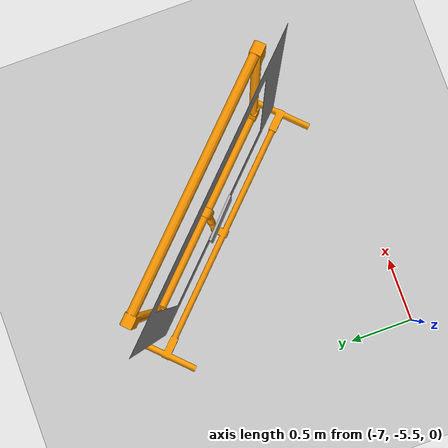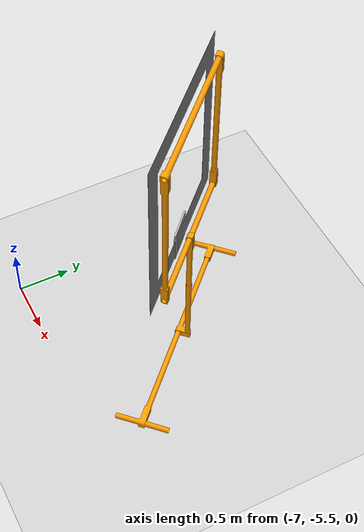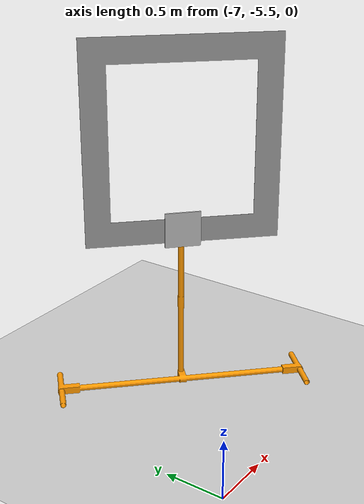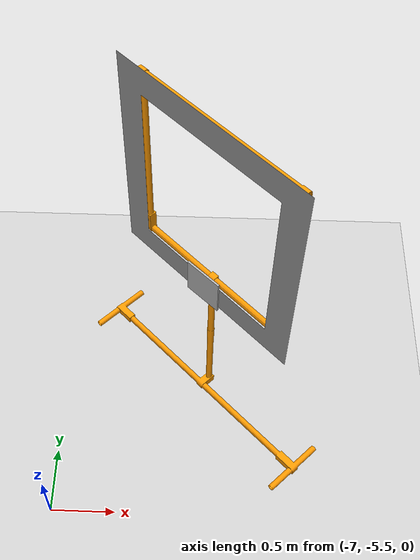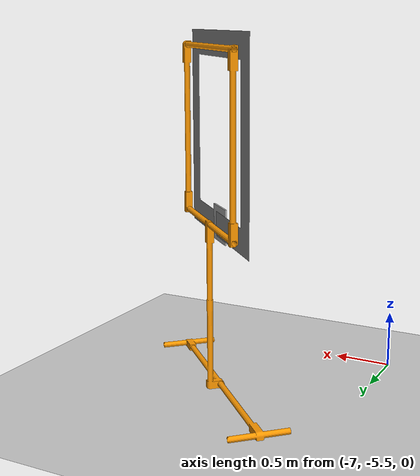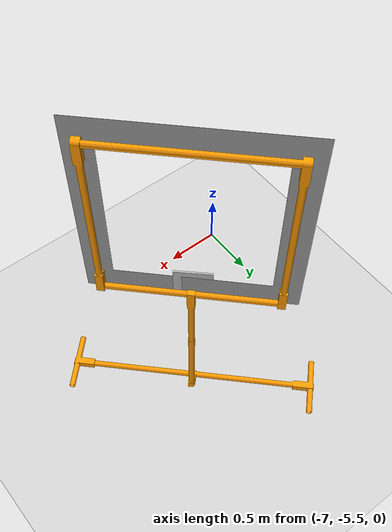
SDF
<sdf version="1.7">
 <world name="default">
  <model name="ground_plane">
   <static>1</static>
   <link name="link">
    <collision name="collision">
     <geometry><plane><normal>0 0 1</normal><size>100 100</size></plane></geometry>
     <surface>
      <contact><collide_bitmask>65535</collide_bitmask></contact>
      <friction><ode><mu>100</mu><mu2>50</mu2></ode></friction>
     </surface>
    </collision>
    <visual name="visual">
     <cast_shadows>0</cast_shadows>
     <geometry><plane><normal>0 0 1</normal><size>100 100</size></plane></geometry>
     <material>
      <script><uri>file://media/materials/scripts/gazebo.material</uri><name>Gazebo/Grey</name></script>
     </material>
    </visual>
   </link>
  </model>
  <model name="Aruco_gate_5">
   <link name="aruco">
    <pose>0.135 0 1.45017 0 -0 1.6</pose>
    <collision name="collision"><geometry><box><size>0.3 0.015 0.3</size></box></geometry></collision>
    <visual name="visual">
     <pose>0 0 0 0 1.57 0</pose>
     <geometry><box><size>0.3 0.015 0.3</size></box></geometry>
     <material>
      <script>
       <uri>model://aruco/materials/scripts</uri>
       <uri>model://aruco/materials/textures</uri>
       <name>aruco_5/Diffuse</name>
      </script>
     </material>
    </visual>
   </link>
   <link name="link_0">
    <pose>-0.126667 1.11221 0.000173 1.57 -0 0</pose>
    <inertial>
     <mass>1</mass>
     <inertia>
      <ixx>0.166667</ixx>
      <ixy>0</ixy>
      <ixz>0</ixz>
      <iyy>0.166667</iyy>
      <iyz>0</iyz>
      <izz>0.166667</izz>
     </inertia>
    </inertial>
    <visual name="visual">
     <geometry><mesh><uri>model://aruco_gate_1/meshes/base.stl</uri><scale>1 1 1</scale></mesh></geometry>
     <material>
      <lighting>1</lighting>
      <script><uri>file://media/materials/scripts/gazebo.material</uri><name>Gazebo/Grey</name></script>
      <ambient>1 0.6 0 1</ambient>
      <diffuse>1 0.6 0 1</diffuse>
      <specular>0.01 0.01 0.01 1</specular>
      <emissive>0 0 0 1</emissive>
      <shader type="vertex"><normal_map>__default__</normal_map></shader>
     </material>
    </visual>
    <collision name="collision">
     <geometry><mesh><uri>model://aruco_gate_1/meshes/base.stl</uri></mesh></geometry>
     <surface>
      <friction>
       <ode><mu>1</mu><mu2>1</mu2><fdir1>0 0 0</fdir1><slip1>0</slip1><slip2>0</slip2></ode>
       <torsional>
        <coefficient>1</coefficient>
        <patch_radius>0</patch_radius>
        <surface_radius>0</surface_radius>
        <use_patch_radius>1</use_patch_radius>
        <ode><slip>0</slip></ode>
       </torsional>
      </friction>
      <bounce><restitution_coefficient>0</restitution_coefficient><threshold>1e+06</threshold></bounce>
      <contact>
       <collide_without_contact>0</collide_without_contact>
       <collide_without_contact_bitmask>1</collide_without_contact_bitmask>
       <collide_bitmask>1</collide_bitmask>
       <ode>
        <soft_cfm>0</soft_cfm>
        <soft_erp>0.2</soft_erp>
        <kp>1e+13</kp>
        <kd>1</kd>
        <max_vel>0.01</max_vel>
        <min_depth>0</min_depth>
       </ode>
       <bullet>
        <split_impulse>1</split_impulse>
        <split_impulse_penetration_threshold>-0.01</split_impulse_penetration_threshold>
        <soft_cfm>0</soft_cfm>
        <soft_erp>0.2</soft_erp>
        <kp>1e+13</kp>
        <kd>1</kd>
       </bullet>
      </contact>
     </surface>
    </collision>
   </link>
   <link name="link_1">
    <pose>0.003333 -0.7 1.40017 0 -0 0</pose>
    <inertial>
     <mass>1</mass>
     <inertia>
      <ixx>0.166667</ixx>
      <ixy>0</ixy>
      <ixz>0</ixz>
      <iyy>0.166667</iyy>
      <iyz>0</iyz>
      <izz>0.166667</izz>
     </inertia>
    </inertial>
    <visual name="visual">
     <geometry><mesh><uri>model://aruco_gate_1/meshes/hoop.stl</uri><scale>1 1 1</scale></mesh></geometry>
     <material>
      <lighting>1</lighting>
      <script><uri>file://media/materials/scripts/gazebo.material</uri><name>Gazebo/Grey</name></script>
      <ambient>1 0.6 0 1</ambient>
      <diffuse>1 0.6 0 1</diffuse>
      <specular>0.01 0.01 0.01 1</specular>
      <emissive>0 0 0 1</emissive>
      <shader type="vertex"><normal_map>__default__</normal_map></shader>
     </material>
    </visual>
    <collision name="collision">
     <geometry><mesh><uri>model://aruco_gate_1/meshes/hoop.stl</uri></mesh></geometry>
     <surface>
      <friction>
       <ode><mu>1</mu><mu2>1</mu2><fdir1>0 0 0</fdir1><slip1>0</slip1><slip2>0</slip2></ode>
       <torsional>
        <coefficient>1</coefficient>
        <patch_radius>0</patch_radius>
        <surface_radius>0</surface_radius>
        <use_patch_radius>1</use_patch_radius>
        <ode><slip>0</slip></ode>
       </torsional>
      </friction>
      <bounce><restitution_coefficient>0</restitution_coefficient><threshold>1e+06</threshold></bounce>
      <contact>
       <collide_without_contact>0</collide_without_contact>
       <collide_without_contact_bitmask>1</collide_without_contact_bitmask>
       <collide_bitmask>1</collide_bitmask>
       <ode>
        <soft_cfm>0</soft_cfm>
        <soft_erp>0.2</soft_erp>
        <kp>1e+13</kp>
        <kd>1</kd>
        <max_vel>0.01</max_vel>
        <min_depth>0</min_depth>
       </ode>
       <bullet>
        <split_impulse>1</split_impulse>
        <split_impulse_penetration_threshold>-0.01</split_impulse_penetration_threshold>
        <soft_cfm>0</soft_cfm>
        <soft_erp>0.2</soft_erp>
        <kp>1e+13</kp>
        <kd>1</kd>
       </bullet>
      </contact>
     </surface>
    </collision>
   </link>
   <link name="link_2">
    <pose>0.123333 -0.797794 3.62017 0 1.57 0</pose>
    <inertial>
     <mass>1</mass>
     <inertia>
      <ixx>0.166667</ixx>
      <ixy>0</ixy>
      <ixz>0</ixz>
      <iyy>0.166667</iyy>
      <iyz>0</iyz>
      <izz>0.166667</izz>
     </inertia>
    </inertial>
    <visual name="visual">
     <geometry><mesh><uri>model://aruco_gate_1/meshes/background.stl</uri><scale>1 1 1</scale></mesh></geometry>
     <material>
      <lighting>1</lighting>
      <script><uri>file://media/materials/scripts/gazebo.material</uri><name>Gazebo/Grey</name></script>
      <ambient>0.9 0.9 0.9 1</ambient>
      <diffuse>0.9 0.9 0.9 1</diffuse>
      <specular>0.01 0.01 0.01 1</specular>
      <emissive>0 0 0 1</emissive>
      <shader type="vertex"><normal_map>__default__</normal_map></shader>
     </material>
    </visual>
    <collision name="collision">
     <geometry><mesh><uri>model://aruco_gate_1/meshes/background.stl</uri></mesh></geometry>
     <surface>
      <friction>
       <ode><mu>1</mu><mu2>1</mu2><fdir1>0 0 0</fdir1><slip1>0</slip1><slip2>0</slip2></ode>
       <torsional>
        <coefficient>1</coefficient>
        <patch_radius>0</patch_radius>
        <surface_radius>0</surface_radius>
        <use_patch_radius>1</use_patch_radius>
        <ode><slip>0</slip></ode>
       </torsional>
      </friction>
      <bounce><restitution_coefficient>0</restitution_coefficient><threshold>1e+06</threshold></bounce>
      <contact>
       <collide_without_contact>0</collide_without_contact>
       <collide_without_contact_bitmask>1</collide_without_contact_bitmask>
       <collide_bitmask>1</collide_bitmask>
       <ode>
        <soft_cfm>0</soft_cfm>
        <soft_erp>0.2</soft_erp>
        <kp>1e+13</kp>
        <kd>1</kd>
        <max_vel>0.01</max_vel>
        <min_depth>0</min_depth>
       </ode>
       <bullet>
        <split_impulse>1</split_impulse>
        <split_impulse_penetration_threshold>-0.01</split_impulse_penetration_threshold>
        <soft_cfm>0</soft_cfm>
        <soft_erp>0.2</soft_erp>
        <kp>1e+13</kp>
        <kd>1</kd>
       </bullet>
      </contact>
     </surface>
    </collision>
   </link>
   <static>1</static>
   <plugin name="gazebo_random_position_plugin" filename="librotors_gazebo_random_position_plugin.so">
    <limitX>0.75</limitX>
    <limitY>0.75</limitY>
    <limitZ>0.5</limitZ>
    <activate_roll>0</activate_roll>
   </plugin>
   <pose>-5.76773 -4.25651 0 0 0 -2.35619</pose>
  </model>
 </world>
</sdf>
